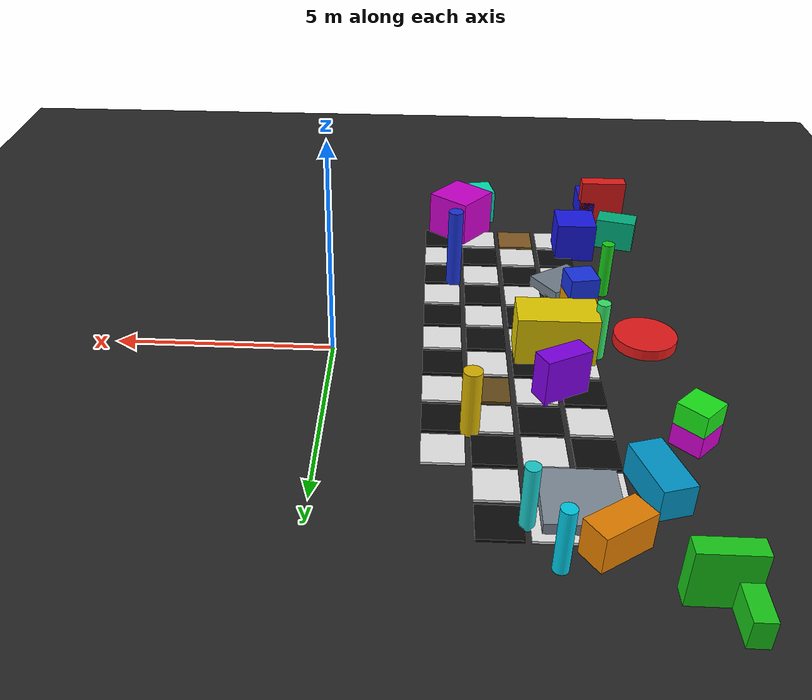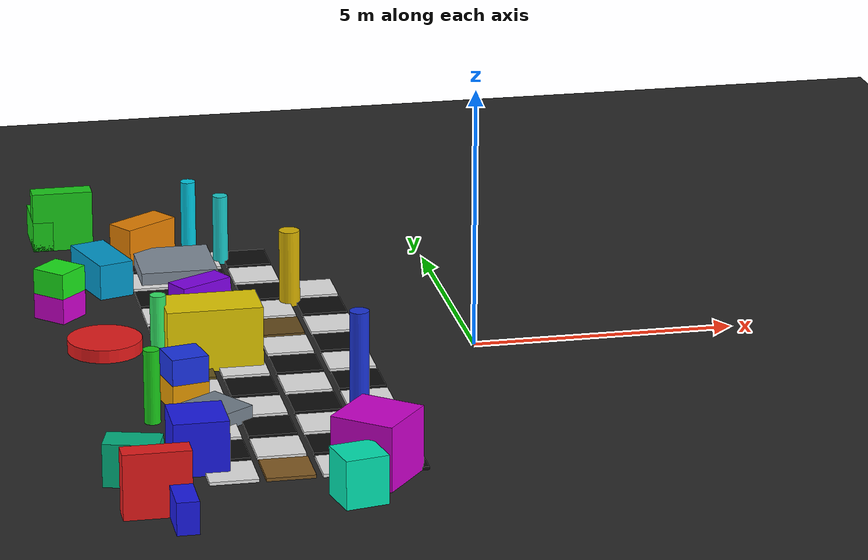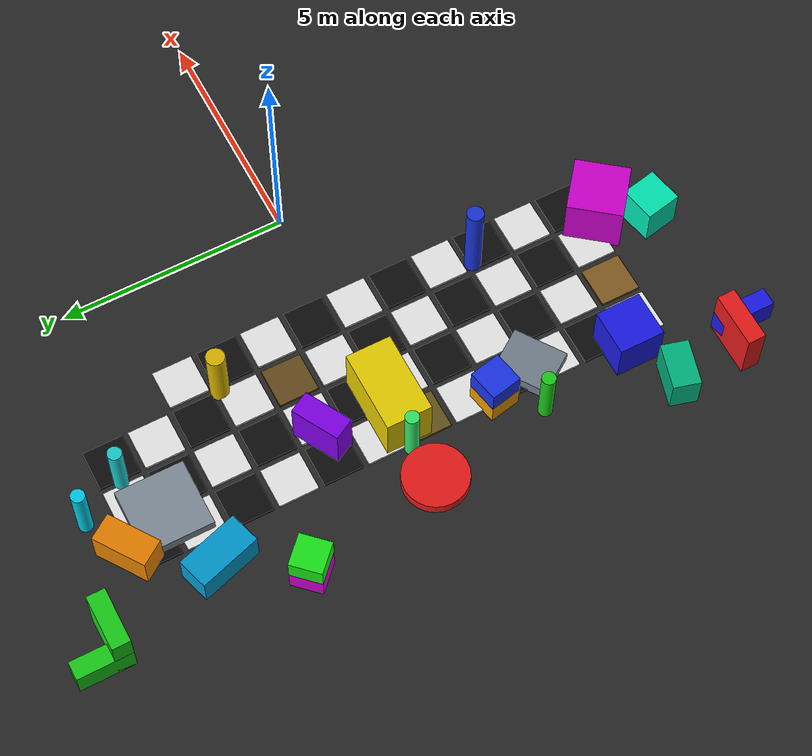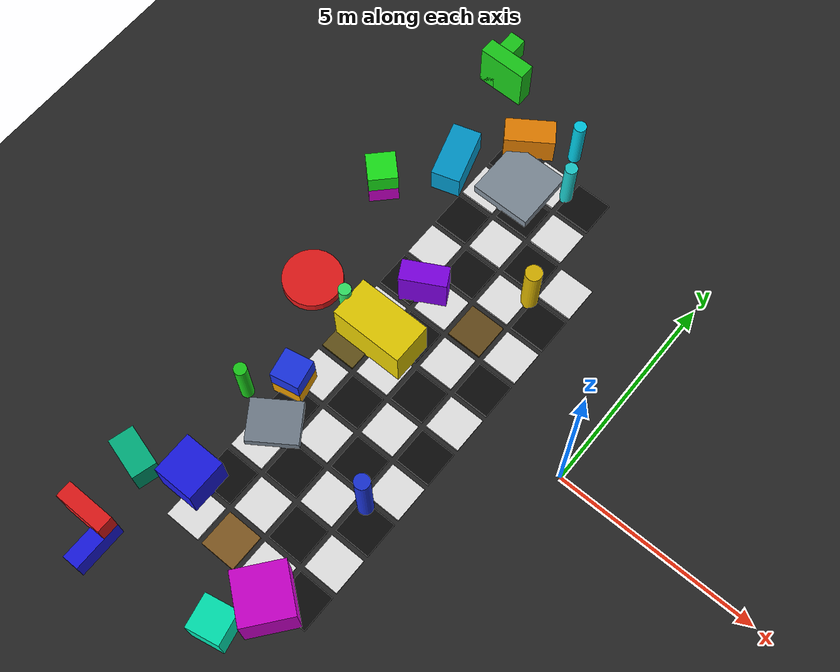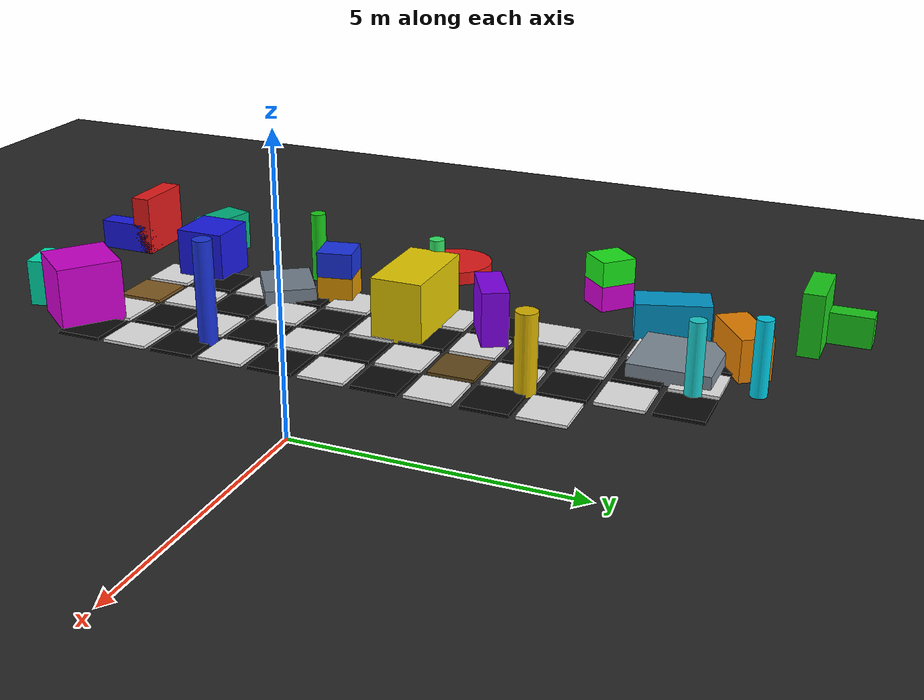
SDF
<sdf version="1.9">
 <world name="slam_world_v5_realistic">
  <model name="ground_plane">
   <static>true</static>
   <link name="ground_link">
    <collision name="collision">
     <geometry><plane><normal>0 0 1</normal><size>80 80</size></plane></geometry>
    </collision>
    <visual name="visual">
     <geometry><plane><normal>0 0 1</normal><size>80 80</size></plane></geometry>
     <material>
      <ambient>0.12 0.12 0.12 1</ambient>
      <diffuse>0.15 0.15 0.15 1</diffuse>
      <specular>0.02 0.02 0.02 1</specular>
     </material>
    </visual>
   </link>
  </model>
  <model name="cb_0">
   <static>true</static>
   <pose>-5.500 -5.500 0.030 0 0 0</pose>
   <link name="link">
    <collision name="col"><geometry><box><size>0.880 0.880 0.060</size></box></geometry></collision>
    <visual name="vis">
     <geometry><box><size>0.880 0.880 0.060</size></box></geometry>
     <material>
      <ambient>0.910 0.910 0.910 1</ambient>
      <diffuse>0.910 0.910 0.910 1</diffuse>
      <specular>0.080 0.080 0.080 1</specular>
     </material>
    </visual>
   </link>
  </model>
  <model name="cb_1">
   <static>true</static>
   <pose>-5.500 -4.500 0.030 0 0 0</pose>
   <link name="link">
    <collision name="col"><geometry><box><size>0.880 0.880 0.060</size></box></geometry></collision>
    <visual name="vis">
     <geometry><box><size>0.880 0.880 0.060</size></box></geometry>
     <material>
      <ambient>0.050 0.050 0.050 1</ambient>
      <diffuse>0.050 0.050 0.050 1</diffuse>
      <specular>0.020 0.020 0.020 1</specular>
     </material>
    </visual>
   </link>
  </model>
  <model name="cb_2">
   <static>true</static>
   <pose>-5.500 -3.500 0.030 0 0 0</pose>
   <link name="link">
    <collision name="col"><geometry><box><size>0.880 0.880 0.060</size></box></geometry></collision>
    <visual name="vis">
     <geometry><box><size>0.880 0.880 0.060</size></box></geometry>
     <material>
      <ambient>0.910 0.910 0.910 1</ambient>
      <diffuse>0.910 0.910 0.910 1</diffuse>
      <specular>0.080 0.080 0.080 1</specular>
     </material>
    </visual>
   </link>
  </model>
  <model name="cb_3">
   <static>true</static>
   <pose>-5.500 -2.500 0.030 0 0 0</pose>
   <link name="link">
    <collision name="col"><geometry><box><size>0.880 0.880 0.060</size></box></geometry></collision>
    <visual name="vis">
     <geometry><box><size>0.880 0.880 0.060</size></box></geometry>
     <material>
      <ambient>0.050 0.050 0.050 1</ambient>
      <diffuse>0.050 0.050 0.050 1</diffuse>
      <specular>0.020 0.020 0.020 1</specular>
     </material>
    </visual>
   </link>
  </model>
  <model name="cb_4">
   <static>true</static>
   <pose>-5.500 -1.500 0.030 0 0 0</pose>
   <link name="link">
    <collision name="col"><geometry><box><size>0.880 0.880 0.060</size></box></geometry></collision>
    <visual name="vis">
     <geometry><box><size>0.880 0.880 0.060</size></box></geometry>
     <material>
      <ambient>0.910 0.910 0.910 1</ambient>
      <diffuse>0.910 0.910 0.910 1</diffuse>
      <specular>0.080 0.080 0.080 1</specular>
     </material>
    </visual>
   </link>
  </model>
  <model name="cb_5">
   <static>true</static>
   <pose>-5.500 -0.500 0.030 0 0 0</pose>
   <link name="link">
    <collision name="col"><geometry><box><size>0.880 0.880 0.060</size></box></geometry></collision>
    <visual name="vis">
     <geometry><box><size>0.880 0.880 0.060</size></box></geometry>
     <material>
      <ambient>0.394 0.326 0.103 1</ambient>
      <diffuse>0.394 0.326 0.103 1</diffuse>
      <specular>0.020 0.020 0.020 1</specular>
     </material>
    </visual>
   </link>
  </model>
  <model name="cb_6">
   <static>true</static>
   <pose>-5.500 0.500 0.030 0 0 0</pose>
   <link name="link">
    <collision name="col"><geometry><box><size>0.880 0.880 0.060</size></box></geometry></collision>
    <visual name="vis">
     <geometry><box><size>0.880 0.880 0.060</size></box></geometry>
     <material>
      <ambient>0.910 0.910 0.910 1</ambient>
      <diffuse>0.910 0.910 0.910 1</diffuse>
      <specular>0.080 0.080 0.080 1</specular>
     </material>
    </visual>
   </link>
  </model>
  <model name="cb_7">
   <static>true</static>
   <pose>-5.500 1.500 0.030 0 0 0</pose>
   <link name="link">
    <collision name="col"><geometry><box><size>0.880 0.880 0.060</size></box></geometry></collision>
    <visual name="vis">
     <geometry><box><size>0.880 0.880 0.060</size></box></geometry>
     <material>
      <ambient>0.050 0.050 0.050 1</ambient>
      <diffuse>0.050 0.050 0.050 1</diffuse>
      <specular>0.020 0.020 0.020 1</specular>
     </material>
    </visual>
   </link>
  </model>
  <model name="cb_8">
   <static>true</static>
   <pose>-5.500 2.500 0.030 0 0 0</pose>
   <link name="link">
    <collision name="col"><geometry><box><size>0.880 0.880 0.060</size></box></geometry></collision>
    <visual name="vis">
     <geometry><box><size>0.880 0.880 0.060</size></box></geometry>
     <material>
      <ambient>0.910 0.910 0.910 1</ambient>
      <diffuse>0.910 0.910 0.910 1</diffuse>
      <specular>0.080 0.080 0.080 1</specular>
     </material>
    </visual>
   </link>
  </model>
  <model name="cb_9">
   <static>true</static>
   <pose>-5.500 3.500 0.030 0 0 0</pose>
   <link name="link">
    <collision name="col"><geometry><box><size>0.880 0.880 0.060</size></box></geometry></collision>
    <visual name="vis">
     <geometry><box><size>0.880 0.880 0.060</size></box></geometry>
     <material>
      <ambient>0.050 0.050 0.050 1</ambient>
      <diffuse>0.050 0.050 0.050 1</diffuse>
      <specular>0.020 0.020 0.020 1</specular>
     </material>
    </visual>
   </link>
  </model>
  <model name="cb_10">
   <static>true</static>
   <pose>-5.500 4.500 0.030 0 0 0</pose>
   <link name="link">
    <collision name="col"><geometry><box><size>0.880 0.880 0.060</size></box></geometry></collision>
    <visual name="vis">
     <geometry><box><size>0.880 0.880 0.060</size></box></geometry>
     <material>
      <ambient>0.910 0.910 0.910 1</ambient>
      <diffuse>0.910 0.910 0.910 1</diffuse>
      <specular>0.080 0.080 0.080 1</specular>
     </material>
    </visual>
   </link>
  </model>
  <model name="cb_11">
   <static>true</static>
   <pose>-5.500 5.500 0.030 0 0 0</pose>
   <link name="link">
    <collision name="col"><geometry><box><size>0.880 0.880 0.060</size></box></geometry></collision>
    <visual name="vis">
     <geometry><box><size>0.880 0.880 0.060</size></box></geometry>
     <material>
      <ambient>0.050 0.050 0.050 1</ambient>
      <diffuse>0.050 0.050 0.050 1</diffuse>
      <specular>0.020 0.020 0.020 1</specular>
     </material>
    </visual>
   </link>
  </model>
  <model name="cb_12">
   <static>true</static>
   <pose>-4.500 -5.500 0.030 0 0 0</pose>
   <link name="link">
    <collision name="col"><geometry><box><size>0.880 0.880 0.060</size></box></geometry></collision>
    <visual name="vis">
     <geometry><box><size>0.880 0.880 0.060</size></box></geometry>
     <material>
      <ambient>0.511 0.355 0.134 1</ambient>
      <diffuse>0.511 0.355 0.134 1</diffuse>
      <specular>0.020 0.020 0.020 1</specular>
     </material>
    </visual>
   </link>
  </model>
  <model name="cb_13">
   <static>true</static>
   <pose>-4.500 -4.500 0.030 0 0 0</pose>
   <link name="link">
    <collision name="col"><geometry><box><size>0.880 0.880 0.060</size></box></geometry></collision>
    <visual name="vis">
     <geometry><box><size>0.880 0.880 0.060</size></box></geometry>
     <material>
      <ambient>0.910 0.910 0.910 1</ambient>
      <diffuse>0.910 0.910 0.910 1</diffuse>
      <specular>0.080 0.080 0.080 1</specular>
     </material>
    </visual>
   </link>
  </model>
  <model name="cb_14">
   <static>true</static>
   <pose>-4.500 -3.500 0.030 0 0 0</pose>
   <link name="link">
    <collision name="col"><geometry><box><size>0.880 0.880 0.060</size></box></geometry></collision>
    <visual name="vis">
     <geometry><box><size>0.880 0.880 0.060</size></box></geometry>
     <material>
      <ambient>0.050 0.050 0.050 1</ambient>
      <diffuse>0.050 0.050 0.050 1</diffuse>
      <specular>0.020 0.020 0.020 1</specular>
     </material>
    </visual>
   </link>
  </model>
  <model name="cb_15">
   <static>true</static>
   <pose>-4.500 -2.500 0.030 0 0 0</pose>
   <link name="link">
    <collision name="col"><geometry><box><size>0.880 0.880 0.060</size></box></geometry></collision>
    <visual name="vis">
     <geometry><box><size>0.880 0.880 0.060</size></box></geometry>
     <material>
      <ambient>0.910 0.910 0.910 1</ambient>
      <diffuse>0.910 0.910 0.910 1</diffuse>
      <specular>0.080 0.080 0.080 1</specular>
     </material>
    </visual>
   </link>
  </model>
  <model name="cb_16">
   <static>true</static>
   <pose>-4.500 -1.500 0.030 0 0 0</pose>
   <link name="link">
    <collision name="col"><geometry><box><size>0.880 0.880 0.060</size></box></geometry></collision>
    <visual name="vis">
     <geometry><box><size>0.880 0.880 0.060</size></box></geometry>
     <material>
      <ambient>0.050 0.050 0.050 1</ambient>
      <diffuse>0.050 0.050 0.050 1</diffuse>
      <specular>0.020 0.020 0.020 1</specular>
     </material>
    </visual>
   </link>
  </model>
  <model name="cb_17">
   <static>true</static>
   <pose>-4.500 -0.500 0.030 0 0 0</pose>
   <link name="link">
    <collision name="col"><geometry><box><size>0.880 0.880 0.060</size></box></geometry></collision>
    <visual name="vis">
     <geometry><box><size>0.880 0.880 0.060</size></box></geometry>
     <material>
      <ambient>0.910 0.910 0.910 1</ambient>
      <diffuse>0.910 0.910 0.910 1</diffuse>
      <specular>0.080 0.080 0.080 1</specular>
     </material>
    </visual>
   </link>
  </model>
  <model name="cb_18">
   <static>true</static>
   <pose>-4.500 0.500 0.030 0 0 0</pose>
   <link name="link">
    <collision name="col"><geometry><box><size>0.880 0.880 0.060</size></box></geometry></collision>
    <visual name="vis">
     <geometry><box><size>0.880 0.880 0.060</size></box></geometry>
     <material>
      <ambient>0.050 0.050 0.050 1</ambient>
      <diffuse>0.050 0.050 0.050 1</diffuse>
      <specular>0.020 0.020 0.020 1</specular>
     </material>
    </visual>
   </link>
  </model>
  <model name="cb_19">
   <static>true</static>
   <pose>-4.500 1.500 0.030 0 0 0</pose>
   <link name="link">
    <collision name="col"><geometry><box><size>0.880 0.880 0.060</size></box></geometry></collision>
    <visual name="vis">
     <geometry><box><size>0.880 0.880 0.060</size></box></geometry>
     <material>
      <ambient>0.910 0.910 0.910 1</ambient>
      <diffuse>0.910 0.910 0.910 1</diffuse>
      <specular>0.080 0.080 0.080 1</specular>
     </material>
    </visual>
   </link>
  </model>
  <model name="cb_20">
   <static>true</static>
   <pose>-4.500 2.500 0.030 0 0 0</pose>
   <link name="link">
    <collision name="col"><geometry><box><size>0.880 0.880 0.060</size></box></geometry></collision>
    <visual name="vis">
     <geometry><box><size>0.880 0.880 0.060</size></box></geometry>
     <material>
      <ambient>0.050 0.050 0.050 1</ambient>
      <diffuse>0.050 0.050 0.050 1</diffuse>
      <specular>0.020 0.020 0.020 1</specular>
     </material>
    </visual>
   </link>
  </model>
  <model name="cb_21">
   <static>true</static>
   <pose>-4.500 3.500 0.030 0 0 0</pose>
   <link name="link">
    <collision name="col"><geometry><box><size>0.880 0.880 0.060</size></box></geometry></collision>
    <visual name="vis">
     <geometry><box><size>0.880 0.880 0.060</size></box></geometry>
     <material>
      <ambient>0.910 0.910 0.910 1</ambient>
      <diffuse>0.910 0.910 0.910 1</diffuse>
      <specular>0.080 0.080 0.080 1</specular>
     </material>
    </visual>
   </link>
  </model>
  <model name="cb_22">
   <static>true</static>
   <pose>-4.500 4.500 0.030 0 0 0</pose>
   <link name="link">
    <collision name="col"><geometry><box><size>0.880 0.880 0.060</size></box></geometry></collision>
    <visual name="vis">
     <geometry><box><size>0.880 0.880 0.060</size></box></geometry>
     <material>
      <ambient>0.050 0.050 0.050 1</ambient>
      <diffuse>0.050 0.050 0.050 1</diffuse>
      <specular>0.020 0.020 0.020 1</specular>
     </material>
    </visual>
   </link>
  </model>
  <model name="cb_23">
   <static>true</static>
   <pose>-4.500 5.500 0.030 0 0 0</pose>
   <link name="link">
    <collision name="col"><geometry><box><size>0.880 0.880 0.060</size></box></geometry></collision>
    <visual name="vis">
     <geometry><box><size>0.880 0.880 0.060</size></box></geometry>
     <material>
      <ambient>0.910 0.910 0.910 1</ambient>
      <diffuse>0.910 0.910 0.910 1</diffuse>
      <specular>0.080 0.080 0.080 1</specular>
     </material>
    </visual>
   </link>
  </model>
  <model name="cb_24">
   <static>true</static>
   <pose>-3.500 -5.500 0.030 0 0 0</pose>
   <link name="link">
    <collision name="col"><geometry><box><size>0.880 0.880 0.060</size></box></geometry></collision>
    <visual name="vis">
     <geometry><box><size>0.880 0.880 0.060</size></box></geometry>
     <material>
      <ambient>0.910 0.910 0.910 1</ambient>
      <diffuse>0.910 0.910 0.910 1</diffuse>
      <specular>0.080 0.080 0.080 1</specular>
     </material>
    </visual>
   </link>
  </model>
  <model name="cb_25">
   <static>true</static>
   <pose>-3.500 -4.500 0.030 0 0 0</pose>
   <link name="link">
    <collision name="col"><geometry><box><size>0.880 0.880 0.060</size></box></geometry></collision>
    <visual name="vis">
     <geometry><box><size>0.880 0.880 0.060</size></box></geometry>
     <material>
      <ambient>0.050 0.050 0.050 1</ambient>
      <diffuse>0.050 0.050 0.050 1</diffuse>
      <specular>0.020 0.020 0.020 1</specular>
     </material>
    </visual>
   </link>
  </model>
  <model name="cb_26">
   <static>true</static>
   <pose>-3.500 -3.500 0.030 0 0 0</pose>
   <link name="link">
    <collision name="col"><geometry><box><size>0.880 0.880 0.060</size></box></geometry></collision>
    <visual name="vis">
     <geometry><box><size>0.880 0.880 0.060</size></box></geometry>
     <material>
      <ambient>0.910 0.910 0.910 1</ambient>
      <diffuse>0.910 0.910 0.910 1</diffuse>
      <specular>0.080 0.080 0.080 1</specular>
     </material>
    </visual>
   </link>
  </model>
  <model name="cb_27">
   <static>true</static>
   <pose>-3.500 -2.500 0.030 0 0 0</pose>
   <link name="link">
    <collision name="col"><geometry><box><size>0.880 0.880 0.060</size></box></geometry></collision>
    <visual name="vis">
     <geometry><box><size>0.880 0.880 0.060</size></box></geometry>
     <material>
      <ambient>0.050 0.050 0.050 1</ambient>
      <diffuse>0.050 0.050 0.050 1</diffuse>
      <specular>0.020 0.020 0.020 1</specular>
     </material>
    </visual>
   </link>
  </model>
  <model name="cb_28">
   <static>true</static>
   <pose>-3.500 -1.500 0.030 0 0 0</pose>
   <link name="link">
    <collision name="col"><geometry><box><size>0.880 0.880 0.060</size></box></geometry></collision>
    <visual name="vis">
     <geometry><box><size>0.880 0.880 0.060</size></box></geometry>
     <material>
      <ambient>0.910 0.910 0.910 1</ambient>
      <diffuse>0.910 0.910 0.910 1</diffuse>
      <specular>0.080 0.080 0.080 1</specular>
     </material>
    </visual>
   </link>
  </model>
  <model name="cb_29">
   <static>true</static>
   <pose>-3.500 -0.500 0.030 0 0 0</pose>
   <link name="link">
    <collision name="col"><geometry><box><size>0.880 0.880 0.060</size></box></geometry></collision>
    <visual name="vis">
     <geometry><box><size>0.880 0.880 0.060</size></box></geometry>
     <material>
      <ambient>0.050 0.050 0.050 1</ambient>
      <diffuse>0.050 0.050 0.050 1</diffuse>
      <specular>0.020 0.020 0.020 1</specular>
     </material>
    </visual>
   </link>
  </model>
  <model name="cb_30">
   <static>true</static>
   <pose>-3.500 0.500 0.030 0 0 0</pose>
   <link name="link">
    <collision name="col"><geometry><box><size>0.880 0.880 0.060</size></box></geometry></collision>
    <visual name="vis">
     <geometry><box><size>0.880 0.880 0.060</size></box></geometry>
     <material>
      <ambient>0.910 0.910 0.910 1</ambient>
      <diffuse>0.910 0.910 0.910 1</diffuse>
      <specular>0.080 0.080 0.080 1</specular>
     </material>
    </visual>
   </link>
  </model>
  <model name="cb_31">
   <static>true</static>
   <pose>-3.500 1.500 0.030 0 0 0</pose>
   <link name="link">
    <collision name="col"><geometry><box><size>0.880 0.880 0.060</size></box></geometry></collision>
    <visual name="vis">
     <geometry><box><size>0.880 0.880 0.060</size></box></geometry>
     <material>
      <ambient>0.396 0.293 0.108 1</ambient>
      <diffuse>0.396 0.293 0.108 1</diffuse>
      <specular>0.020 0.020 0.020 1</specular>
     </material>
    </visual>
   </link>
  </model>
  <model name="cb_32">
   <static>true</static>
   <pose>-3.500 2.500 0.030 0 0 0</pose>
   <link name="link">
    <collision name="col"><geometry><box><size>0.880 0.880 0.060</size></box></geometry></collision>
    <visual name="vis">
     <geometry><box><size>0.880 0.880 0.060</size></box></geometry>
     <material>
      <ambient>0.910 0.910 0.910 1</ambient>
      <diffuse>0.910 0.910 0.910 1</diffuse>
      <specular>0.080 0.080 0.080 1</specular>
     </material>
    </visual>
   </link>
  </model>
  <model name="cb_33">
   <static>true</static>
   <pose>-3.500 3.500 0.030 0 0 0</pose>
   <link name="link">
    <collision name="col"><geometry><box><size>0.880 0.880 0.060</size></box></geometry></collision>
    <visual name="vis">
     <geometry><box><size>0.880 0.880 0.060</size></box></geometry>
     <material>
      <ambient>0.050 0.050 0.050 1</ambient>
      <diffuse>0.050 0.050 0.050 1</diffuse>
      <specular>0.020 0.020 0.020 1</specular>
     </material>
    </visual>
   </link>
  </model>
  <model name="cb_34">
   <static>true</static>
   <pose>-3.500 4.500 0.030 0 0 0</pose>
   <link name="link">
    <collision name="col"><geometry><box><size>0.880 0.880 0.060</size></box></geometry></collision>
    <visual name="vis">
     <geometry><box><size>0.880 0.880 0.060</size></box></geometry>
     <material>
      <ambient>0.910 0.910 0.910 1</ambient>
      <diffuse>0.910 0.910 0.910 1</diffuse>
      <specular>0.080 0.080 0.080 1</specular>
     </material>
    </visual>
   </link>
  </model>
  <model name="cb_35">
   <static>true</static>
   <pose>-3.500 5.500 0.030 0 0 0</pose>
   <link name="link">
    <collision name="col"><geometry><box><size>0.880 0.880 0.060</size></box></geometry></collision>
    <visual name="vis">
     <geometry><box><size>0.880 0.880 0.060</size></box></geometry>
     <material>
      <ambient>0.050 0.050 0.050 1</ambient>
      <diffuse>0.050 0.050 0.050 1</diffuse>
      <specular>0.020 0.020 0.020 1</specular>
     </material>
    </visual>
   </link>
  </model>
  <model name="cb_36">
   <static>true</static>
   <pose>-2.500 -5.500 0.030 0 0 0</pose>
   <link name="link">
    <collision name="col"><geometry><box><size>0.880 0.880 0.060</size></box></geometry></collision>
    <visual name="vis">
     <geometry><box><size>0.880 0.880 0.060</size></box></geometry>
     <material>
      <ambient>0.050 0.050 0.050 1</ambient>
      <diffuse>0.050 0.050 0.050 1</diffuse>
      <specular>0.020 0.020 0.020 1</specular>
     </material>
    </visual>
   </link>
  </model>
  <model name="cb_37">
   <static>true</static>
   <pose>-2.500 -4.500 0.030 0 0 0</pose>
   <link name="link">
    <collision name="col"><geometry><box><size>0.880 0.880 0.060</size></box></geometry></collision>
    <visual name="vis">
     <geometry><box><size>0.880 0.880 0.060</size></box></geometry>
     <material>
      <ambient>0.910 0.910 0.910 1</ambient>
      <diffuse>0.910 0.910 0.910 1</diffuse>
      <specular>0.080 0.080 0.080 1</specular>
     </material>
    </visual>
   </link>
  </model>
  <model name="cb_38">
   <static>true</static>
   <pose>-2.500 -3.500 0.030 0 0 0</pose>
   <link name="link">
    <collision name="col"><geometry><box><size>0.880 0.880 0.060</size></box></geometry></collision>
    <visual name="vis">
     <geometry><box><size>0.880 0.880 0.060</size></box></geometry>
     <material>
      <ambient>0.050 0.050 0.050 1</ambient>
      <diffuse>0.050 0.050 0.050 1</diffuse>
      <specular>0.020 0.020 0.020 1</specular>
     </material>
    </visual>
   </link>
  </model>
  <model name="cb_39">
   <static>true</static>
   <pose>-2.500 -2.500 0.030 0 0 0</pose>
   <link name="link">
    <collision name="col"><geometry><box><size>0.880 0.880 0.060</size></box></geometry></collision>
    <visual name="vis">
     <geometry><box><size>0.880 0.880 0.060</size></box></geometry>
     <material>
      <ambient>0.910 0.910 0.910 1</ambient>
      <diffuse>0.910 0.910 0.910 1</diffuse>
      <specular>0.080 0.080 0.080 1</specular>
     </material>
    </visual>
   </link>
  </model>
  <model name="cb_40">
   <static>true</static>
   <pose>-2.500 -1.500 0.030 0 0 0</pose>
   <link name="link">
    <collision name="col"><geometry><box><size>0.880 0.880 0.060</size></box></geometry></collision>
    <visual name="vis">
     <geometry><box><size>0.880 0.880 0.060</size></box></geometry>
     <material>
      <ambient>0.050 0.050 0.050 1</ambient>
      <diffuse>0.050 0.050 0.050 1</diffuse>
      <specular>0.020 0.020 0.020 1</specular>
     </material>
    </visual>
   </link>
  </model>
  <model name="cb_41">
   <static>true</static>
   <pose>-2.500 -0.500 0.030 0 0 0</pose>
   <link name="link">
    <collision name="col"><geometry><box><size>0.880 0.880 0.060</size></box></geometry></collision>
    <visual name="vis">
     <geometry><box><size>0.880 0.880 0.060</size></box></geometry>
     <material>
      <ambient>0.910 0.910 0.910 1</ambient>
      <diffuse>0.910 0.910 0.910 1</diffuse>
      <specular>0.080 0.080 0.080 1</specular>
     </material>
    </visual>
   </link>
  </model>
  <model name="cb_42">
   <static>true</static>
   <pose>-2.500 0.500 0.030 0 0 0</pose>
   <link name="link">
    <collision name="col"><geometry><box><size>0.880 0.880 0.060</size></box></geometry></collision>
    <visual name="vis">
     <geometry><box><size>0.880 0.880 0.060</size></box></geometry>
     <material>
      <ambient>0.050 0.050 0.050 1</ambient>
      <diffuse>0.050 0.050 0.050 1</diffuse>
      <specular>0.020 0.020 0.020 1</specular>
     </material>
    </visual>
   </link>
  </model>
  <model name="cb_43">
   <static>true</static>
   <pose>-2.500 1.500 0.030 0 0 0</pose>
   <link name="link">
    <collision name="col"><geometry><box><size>0.880 0.880 0.060</size></box></geometry></collision>
    <visual name="vis">
     <geometry><box><size>0.880 0.880 0.060</size></box></geometry>
     <material>
      <ambient>0.910 0.910 0.910 1</ambient>
      <diffuse>0.910 0.910 0.910 1</diffuse>
      <specular>0.080 0.080 0.080 1</specular>
     </material>
    </visual>
   </link>
  </model>
  <model name="cb_44">
   <static>true</static>
   <pose>-2.500 2.500 0.030 0 0 0</pose>
   <link name="link">
    <collision name="col"><geometry><box><size>0.880 0.880 0.060</size></box></geometry></collision>
    <visual name="vis">
     <geometry><box><size>0.880 0.880 0.060</size></box></geometry>
     <material>
      <ambient>0.050 0.050 0.050 1</ambient>
      <diffuse>0.050 0.050 0.050 1</diffuse>
      <specular>0.020 0.020 0.020 1</specular>
     </material>
    </visual>
   </link>
  </model>
  <model name="cb_45">
   <static>true</static>
   <pose>-2.500 3.500 0.030 0 0 0</pose>
   <link name="link">
    <collision name="col"><geometry><box><size>0.880 0.880 0.060</size></box></geometry></collision>
    <visual name="vis">
     <geometry><box><size>0.880 0.880 0.060</size></box></geometry>
     <material>
      <ambient>0.910 0.910 0.910 1</ambient>
      <diffuse>0.910 0.910 0.910 1</diffuse>
      <specular>0.080 0.080 0.080 1</specular>
     </material>
    </visual>
   </link>
  </model>
  <model name="pillar_0">
   <static>true</static>
   <pose>-6.000 0.000 0.700 0 0 0</pose>
   <link name="link">
    <collision name="col">
     <geometry><cylinder><radius>0.150</radius><length>1.400</length></cylinder></geometry>
    </collision>
    <visual name="vis">
     <geometry><cylinder><radius>0.150</radius><length>1.400</length></cylinder></geometry>
     <material>
      <ambient>0.200 0.900 0.400 1</ambient>
      <diffuse>0.200 0.900 0.400 1</diffuse>
      <specular>0.350 0.350 0.350 1</specular>
     </material>
    </visual>
   </link>
  </model>
  <model name="pillar_5">
   <static>true</static>
   <pose>-4.000 5.500 0.700 0 0 0</pose>
   <link name="link">
    <collision name="col">
     <geometry><cylinder><radius>0.150</radius><length>1.400</length></cylinder></geometry>
    </collision>
    <visual name="vis">
     <geometry><cylinder><radius>0.150</radius><length>1.400</length></cylinder></geometry>
     <material>
      <ambient>0.100 0.800 0.800 1</ambient>
      <diffuse>0.100 0.800 0.800 1</diffuse>
      <specular>0.300 0.300 0.300 1</specular>
     </material>
    </visual>
   </link>
  </model>
  <model name="pillar_9">
   <static>true</static>
   <pose>-6.500 -2.800 0.700 0 0 0</pose>
   <link name="link">
    <collision name="col">
     <geometry><cylinder><radius>0.150</radius><length>1.400</length></cylinder></geometry>
    </collision>
    <visual name="vis">
     <geometry><cylinder><radius>0.150</radius><length>1.400</length></cylinder></geometry>
     <material>
      <ambient>0.100 0.800 0.100 1</ambient>
      <diffuse>0.100 0.800 0.100 1</diffuse>
      <specular>0.250 0.250 0.250 1</specular>
     </material>
    </visual>
   </link>
  </model>
  <model name="pillar_11">
   <static>true</static>
   <pose>-4.500 6.500 0.700 0 0 0</pose>
   <link name="link">
    <collision name="col">
     <geometry><cylinder><radius>0.150</radius><length>1.400</length></cylinder></geometry>
    </collision>
    <visual name="vis">
     <geometry><cylinder><radius>0.150</radius><length>1.400</length></cylinder></geometry>
     <material>
      <ambient>0.000 0.800 0.900 1</ambient>
      <diffuse>0.000 0.800 0.900 1</diffuse>
      <specular>0.250 0.250 0.250 1</specular>
     </material>
    </visual>
   </link>
  </model>
  <model name="fat_cyl_0">
   <static>true</static>
   <pose>-7.000 0.000 0.500 0 0 0</pose>
   <link name="link">
    <collision name="col">
     <geometry><cylinder><radius>0.700</radius><length>0.250</length></cylinder></geometry>
    </collision>
    <visual name="vis">
     <geometry><cylinder><radius>0.700</radius><length>0.250</length></cylinder></geometry>
     <material>
      <ambient>0.900 0.100 0.100 1</ambient>
      <diffuse>0.900 0.100 0.100 1</diffuse>
      <specular>0.400 0.400 0.400 1</specular>
     </material>
    </visual>
   </link>
  </model>
  <model name="mbox_1">
   <static>true</static>
   <pose>-6.000 -5.000 0.500 0 0 0.000</pose>
   <link name="link">
    <collision name="col"><geometry><box><size>1.000 1.000 1.000</size></box></geometry></collision>
    <visual name="vis">
     <geometry><box><size>1.000 1.000 1.000</size></box></geometry>
     <material>
      <ambient>0.100 0.100 0.900 1</ambient>
      <diffuse>0.100 0.100 0.900 1</diffuse>
      <specular>0.150 0.150 0.150 1</specular>
     </material>
    </visual>
   </link>
  </model>
  <model name="mbox_3">
   <static>true</static>
   <pose>-5.500 6.000 0.400 0 0 0.600</pose>
   <link name="link">
    <collision name="col"><geometry><box><size>1.200 0.600 0.800</size></box></geometry></collision>
    <visual name="vis">
     <geometry><box><size>1.200 0.600 0.800</size></box></geometry>
     <material>
      <ambient>0.900 0.500 0.000 1</ambient>
      <diffuse>0.900 0.500 0.000 1</diffuse>
      <specular>0.150 0.150 0.150 1</specular>
     </material>
    </visual>
   </link>
  </model>
  <model name="mbox_4">
   <static>true</static>
   <pose>-6.500 4.500 0.350 0 0 0.300</pose>
   <link name="link">
    <collision name="col"><geometry><box><size>0.700 1.400 0.700</size></box></geometry></collision>
    <visual name="vis">
     <geometry><box><size>0.700 1.400 0.700</size></box></geometry>
     <material>
      <ambient>0.000 0.600 0.800 1</ambient>
      <diffuse>0.000 0.600 0.800 1</diffuse>
      <specular>0.150 0.150 0.150 1</specular>
     </material>
    </visual>
   </link>
  </model>
  <model name="mbox_6">
   <static>true</static>
   <pose>-5.000 1.500 0.550 0 0 0.500</pose>
   <link name="link">
    <collision name="col"><geometry><box><size>1.100 0.500 1.100</size></box></geometry></collision>
    <visual name="vis">
     <geometry><box><size>1.100 0.500 1.100</size></box></geometry>
     <material>
      <ambient>0.500 0.000 0.900 1</ambient>
      <diffuse>0.500 0.000 0.900 1</diffuse>
      <specular>0.150 0.150 0.150 1</specular>
     </material>
    </visual>
   </link>
  </model>
  <model name="mbox_9">
   <static>true</static>
   <pose>-3.500 -7.000 0.450 0 0 0.200</pose>
   <link name="link">
    <collision name="col"><geometry><box><size>0.800 0.800 0.900</size></box></geometry></collision>
    <visual name="vis">
     <geometry><box><size>0.800 0.800 0.900</size></box></geometry>
     <material>
      <ambient>0.000 0.900 0.700 1</ambient>
      <diffuse>0.000 0.900 0.700 1</diffuse>
      <specular>0.150 0.150 0.150 1</specular>
     </material>
    </visual>
   </link>
  </model>
  <model name="mbox_11">
   <static>true</static>
   <pose>-7.200 -5.500 0.400 0 0 1.300</pose>
   <link name="link">
    <collision name="col"><geometry><box><size>0.600 1.000 0.800</size></box></geometry></collision>
    <visual name="vis">
     <geometry><box><size>0.600 1.000 0.800</size></box></geometry>
     <material>
      <ambient>0.000 0.700 0.500 1</ambient>
      <diffuse>0.000 0.700 0.500 1</diffuse>
      <specular>0.150 0.150 0.150 1</specular>
     </material>
    </visual>
   </link>
  </model>
  <model name="stripe_lo_3">
   <static>true</static>
   <pose>-7.500 3.000 0.250 0 0 0.800</pose>
   <link name="link">
    <collision name="col"><geometry><box><size>0.700 0.700 0.500</size></box></geometry></collision>
    <visual name="vis">
     <geometry><box><size>0.700 0.700 0.500</size></box></geometry>
     <material>
      <ambient>0.800 0.000 0.800 1</ambient>
      <diffuse>0.800 0.000 0.800 1</diffuse>
      <specular>0.300 0.300 0.300 1</specular>
     </material>
    </visual>
   </link>
  </model>
  <model name="stripe_hi_3">
   <static>true</static>
   <pose>-7.500 3.000 0.750 0 0 0.800</pose>
   <link name="link">
    <collision name="col"><geometry><box><size>0.700 0.700 0.500</size></box></geometry></collision>
    <visual name="vis">
     <geometry><box><size>0.700 0.700 0.500</size></box></geometry>
     <material>
      <ambient>0.100 0.900 0.100 1</ambient>
      <diffuse>0.100 0.900 0.100 1</diffuse>
      <specular>0.300 0.300 0.300 1</specular>
     </material>
    </visual>
   </link>
  </model>
  <model name="stripe_lo_5">
   <static>true</static>
   <pose>-5.800 -2.000 0.250 0 0 0.200</pose>
   <link name="link">
    <collision name="col"><geometry><box><size>0.700 0.700 0.500</size></box></geometry></collision>
    <visual name="vis">
     <geometry><box><size>0.700 0.700 0.500</size></box></geometry>
     <material>
      <ambient>0.900 0.600 0.000 1</ambient>
      <diffuse>0.900 0.600 0.000 1</diffuse>
      <specular>0.300 0.300 0.300 1</specular>
     </material>
    </visual>
   </link>
  </model>
  <model name="stripe_hi_5">
   <static>true</static>
   <pose>-5.800 -2.000 0.750 0 0 0.200</pose>
   <link name="link">
    <collision name="col"><geometry><box><size>0.700 0.700 0.500</size></box></geometry></collision>
    <visual name="vis">
     <geometry><box><size>0.700 0.700 0.500</size></box></geometry>
     <material>
      <ambient>0.100 0.200 0.900 1</ambient>
      <diffuse>0.100 0.200 0.900 1</diffuse>
      <specular>0.300 0.300 0.300 1</specular>
     </material>
    </visual>
   </link>
  </model>
  <model name="corner_a_0">
   <static>true</static>
   <pose>-7.000 -7.000 0.600 0 0 0.000</pose>
   <link name="link">
    <collision name="col"><geometry><box><size>1.200 0.400 1.200</size></box></geometry></collision>
    <visual name="vis">
     <geometry><box><size>1.200 0.400 1.200</size></box></geometry>
     <material>
      <ambient>0.900 0.100 0.100 1</ambient>
      <diffuse>0.900 0.100 0.100 1</diffuse>
      <specular>0.150 0.150 0.150 1</specular>
     </material>
    </visual>
   </link>
  </model>
  <model name="corner_b_0">
   <static>true</static>
   <pose>-6.600 -7.400 0.300 0 0 0.000</pose>
   <link name="link">
    <collision name="col"><geometry><box><size>0.400 1.200 0.600</size></box></geometry></collision>
    <visual name="vis">
     <geometry><box><size>0.400 1.200 0.600</size></box></geometry>
     <material>
      <ambient>0.100 0.100 0.900 1</ambient>
      <diffuse>0.100 0.100 0.900 1</diffuse>
      <specular>0.150 0.150 0.150 1</specular>
     </material>
    </visual>
   </link>
  </model>
  <model name="corner_a_3">
   <static>true</static>
   <pose>-7.000 7.000 0.600 0 0 0.000</pose>
   <link name="link">
    <collision name="col"><geometry><box><size>1.200 0.400 1.200</size></box></geometry></collision>
    <visual name="vis">
     <geometry><box><size>1.200 0.400 1.200</size></box></geometry>
     <material>
      <ambient>0.100 0.800 0.100 1</ambient>
      <diffuse>0.100 0.800 0.100 1</diffuse>
      <specular>0.150 0.150 0.150 1</specular>
     </material>
    </visual>
   </link>
  </model>
  <model name="corner_b_3">
   <static>true</static>
   <pose>-7.400 7.400 0.300 0 0 0.000</pose>
   <link name="link">
    <collision name="col"><geometry><box><size>0.400 1.200 0.600</size></box></geometry></collision>
    <visual name="vis">
     <geometry><box><size>0.400 1.200 0.600</size></box></geometry>
     <material>
      <ambient>0.100 0.800 0.100 1</ambient>
      <diffuse>0.100 0.800 0.100 1</diffuse>
      <specular>0.150 0.150 0.150 1</specular>
     </material>
    </visual>
   </link>
  </model>
  <model name="tower_1">
   <static>true</static>
   <pose>-2.783 -3.151 1.000 0 0 0</pose>
   <link name="link">
    <collision name="col">
     <geometry><cylinder><radius>0.180</radius><length>2.000</length></cylinder></geometry>
    </collision>
    <visual name="vis">
     <geometry><cylinder><radius>0.180</radius><length>2.000</length></cylinder></geometry>
     <material>
      <ambient>0.100 0.200 0.850 1</ambient>
      <diffuse>0.100 0.200 0.850 1</diffuse>
      <specular>0.400 0.400 0.400 1</specular>
     </material>
    </visual>
   </link>
  </model>
  <model name="tower_3">
   <static>true</static>
   <pose>-3.047 2.867 0.750 0 0 0</pose>
   <link name="link">
    <collision name="col">
     <geometry><cylinder><radius>0.200</radius><length>1.500</length></cylinder></geometry>
    </collision>
    <visual name="vis">
     <geometry><cylinder><radius>0.200</radius><length>1.500</length></cylinder></geometry>
     <material>
      <ambient>0.850 0.700 0.000 1</ambient>
      <diffuse>0.850 0.700 0.000 1</diffuse>
      <specular>0.400 0.400 0.400 1</specular>
     </material>
    </visual>
   </link>
  </model>
  <model name="plat_low_1">
   <static>true</static>
   <pose>-5.000 5.000 0.150 0 0 0.000</pose>
   <link name="link">
    <collision name="col"><geometry><box><size>1.500 1.500 0.300</size></box></geometry></collision>
    <visual name="vis">
     <geometry><box><size>1.500 1.500 0.300</size></box></geometry>
     <material>
      <ambient>0.500 0.550 0.600 1</ambient>
      <diffuse>0.500 0.550 0.600 1</diffuse>
      <specular>0.030 0.030 0.030 1</specular>
     </material>
    </visual>
   </link>
  </model>
  <model name="plat_low_3">
   <static>true</static>
   <pose>-5.500 -3.000 0.150 0 0 0.600</pose>
   <link name="link">
    <collision name="col"><geometry><box><size>1.200 1.000 0.300</size></box></geometry></collision>
    <visual name="vis">
     <geometry><box><size>1.200 1.000 0.300</size></box></geometry>
     <material>
      <ambient>0.450 0.500 0.550 1</ambient>
      <diffuse>0.450 0.500 0.550 1</diffuse>
      <specular>0.040 0.040 0.040 1</specular>
     </material>
    </visual>
   </link>
  </model>
  <model name="plat_hi_0">
   <static>true</static>
   <pose>-5.000 0.000 0.600 0 0 0.000</pose>
   <link name="link">
    <collision name="col"><geometry><box><size>1.800 1.000 1.200</size></box></geometry></collision>
    <visual name="vis">
     <geometry><box><size>1.800 1.000 1.200</size></box></geometry>
     <material>
      <ambient>0.900 0.800 0.000 1</ambient>
      <diffuse>0.900 0.800 0.000 1</diffuse>
      <specular>0.300 0.300 0.300 1</specular>
     </material>
    </visual>
   </link>
  </model>
  <model name="plat_hi_2">
   <static>true</static>
   <pose>-3.000 -6.000 0.600 0 0 0.900</pose>
   <link name="link">
    <collision name="col"><geometry><box><size>1.200 1.200 1.200</size></box></geometry></collision>
    <visual name="vis">
     <geometry><box><size>1.200 1.200 1.200</size></box></geometry>
     <material>
      <ambient>0.800 0.000 0.800 1</ambient>
      <diffuse>0.800 0.000 0.800 1</diffuse>
      <specular>0.250 0.250 0.250 1</specular>
     </material>
    </visual>
   </link>
  </model>
 </world>
</sdf>
